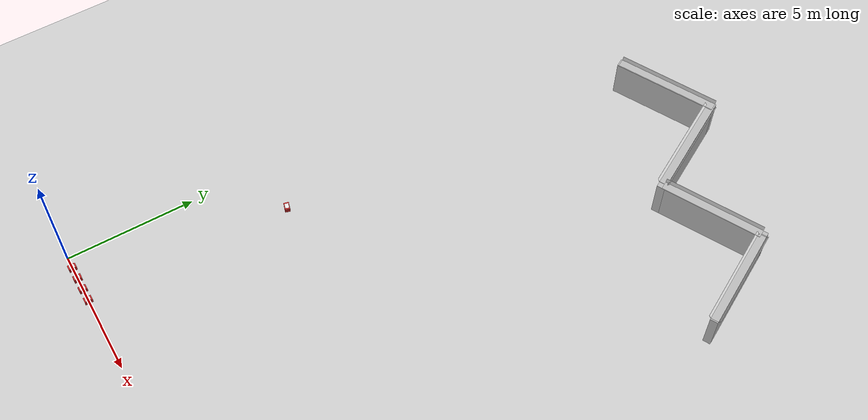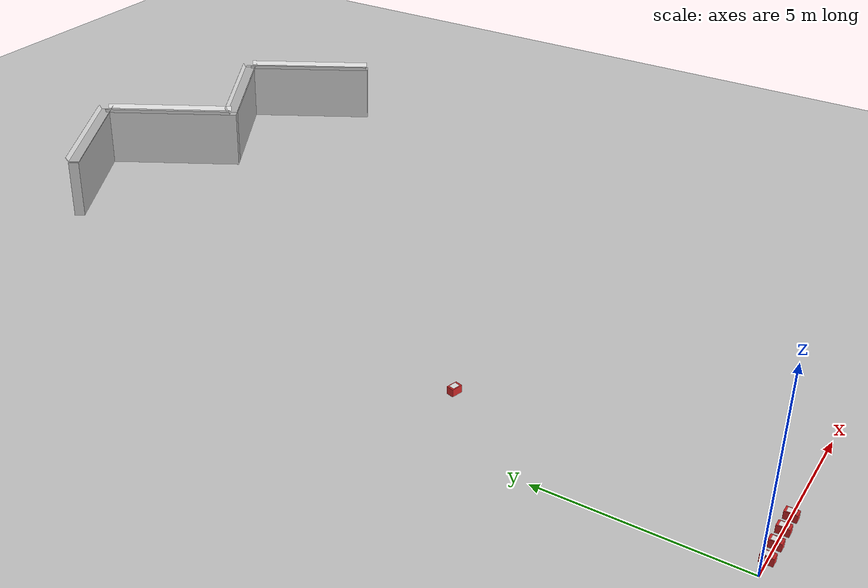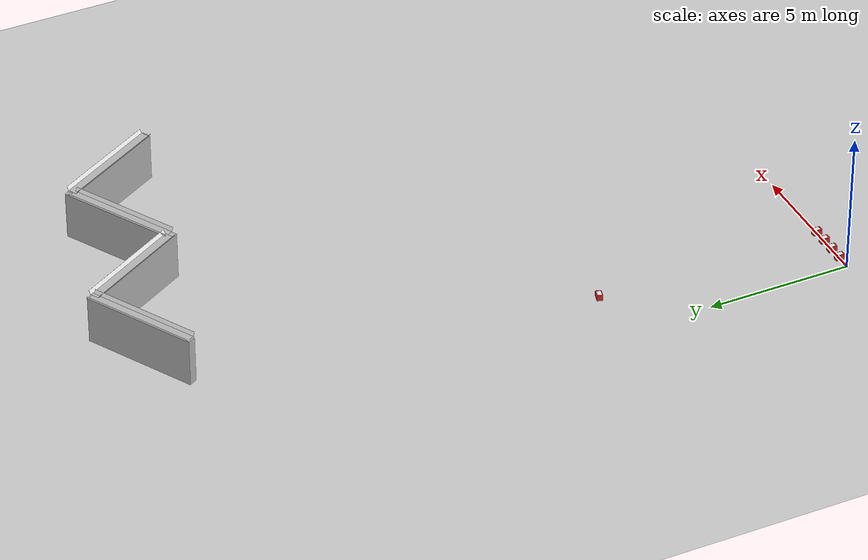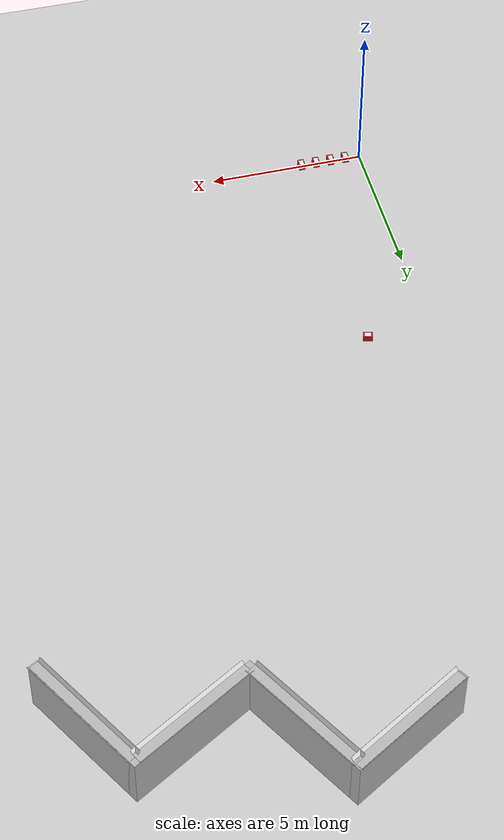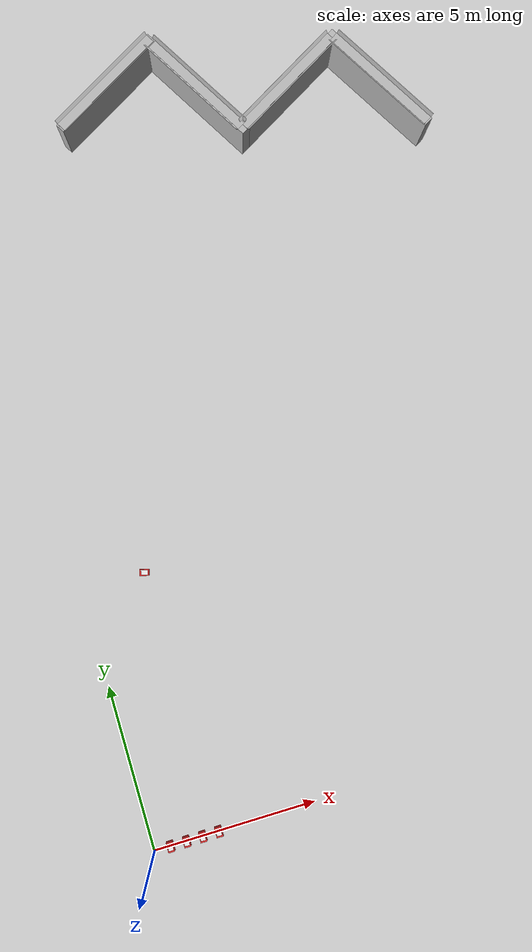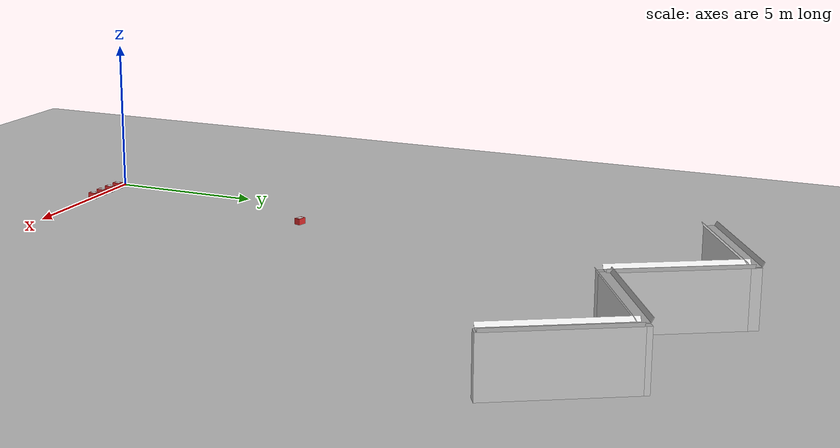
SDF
<?xml version="1.0" ?>
<sdf version="1.5">
  <world name="default">
    <!-- A global light source -->
    <include>
      <uri>model://sun</uri>
    </include>
    <!-- A ground plane -->
    <include>
      <uri>model://ground_plane</uri>
    </include>
    <include>
      <uri>model://asphalt_plane</uri>
    </include>

    <include>
      <uri>model://mbzirc_uav_wall</uri>
      <name>mbzirc_uav_wall</name>
	  <pose> 13.2 20.3 0.1 0 0 0.52359877559 </pose>
    </include>

    <include>
      <name>box_red_a</name>
      <uri>model://mbzirc_box_red</uri>
      <pose>0.5 0 0.1 0 0 0</pose>
    </include>
    <include>
      <name>box_red_b</name>
      <uri>model://mbzirc_box_red</uri>
      <pose>1.0 0 0.1 0 0 0</pose>
    </include>
    <include>
      <name>box_red_c</name>
      <uri>model://mbzirc_box_red</uri>
      <pose>1.5 0 0.1 0 0 0</pose>
    </include>
    <include>
      <name>box_red_d</name>
      <uri>model://mbzirc_box_red</uri>
      <pose>2.0 0 0.1 0 0 0</pose>
    </include>

    <include>
      <name>box_red_1</name>
      <uri>model://mbzirc_box_red</uri>
      <pose>2 8 0.1 0 0 1.308996939</pose>
    </include>

    <physics name='default_physics' default='0' type='ode'>
      <gravity>0 0 -9.8066</gravity>
      <ode>
        <solver>
          <type>quick</type>
          <iters>10</iters>
          <sor>1.3</sor>
          <use_dynamic_moi_rescaling>0</use_dynamic_moi_rescaling>
        </solver>
        <constraints>
          <cfm>0</cfm>
          <erp>0.2</erp>
          <contact_max_correcting_vel>100</contact_max_correcting_vel>
          <contact_surface_layer>0.001</contact_surface_layer>
        </constraints>
      </ode>
      <max_step_size>0.004</max_step_size>
      <real_time_factor>1</real_time_factor>
      <real_time_update_rate>250</real_time_update_rate>
      <magnetic_field>6.0e-6 2.3e-5 -4.2e-5</magnetic_field>
    </physics>
  </world>
</sdf>

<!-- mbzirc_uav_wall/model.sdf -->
<sdf version="1.5">
  <model name="mbzirc_uav_wall">
    <static>true</static>
    <link name="link1">
	<pose frame=''>0.0 0 0.95 0 0.0 0</pose>
      <collision name="collision">
        <geometry>
          <box>
            <size>0.3 4.0 1.7</size>
          </box>
        </geometry>
      </collision>
      <visual name="visual">
        <cast_shadows>false</cast_shadows>
        <geometry>
          <box>
            <size>0.3 4.0 1.7</size>
          </box>
        </geometry>
        <material>
          <script>
            <uri>model://mbzirc_uav_wall/materials/scripts</uri>
            <uri>model://mbzirc_uav_wall/materials/textures</uri>
            <name>vrc/tennis_net</name>
          </script>
        </material>
      </visual>
    </link>
    <link name="link2">
	<pose frame=''>-1.85 2.0 0.95 0 0.0 1.57079</pose>
      <collision name="collision">
        <geometry>
          <box>
            <size>0.3 4.0 1.7</size>
          </box>
        </geometry>
      </collision>
      <visual name="visual">
        <cast_shadows>false</cast_shadows>
        <geometry>
          <box>
            <size>0.3 4.0 1.7</size>
          </box>
        </geometry>
        <material>
          <script>
            <uri>model://mbzirc_uav_wall/materials/scripts</uri>
            <uri>model://mbzirc_uav_wall/materials/textures</uri>
            <name>vrc/tennis_net</name>
          </script>
        </material>
      </visual>
    </link>
    <link name="link3">
	<pose frame=''>-4.0 3.85 0.95 0 0.0 0.0</pose>
      <collision name="collision">
        <geometry>
          <box>
            <size>0.3 4.0 1.7</size>
          </box>
        </geometry>
      </collision>
      <visual name="visual">
        <cast_shadows>false</cast_shadows>
        <geometry>
          <box>
            <size>0.3 4.0 1.7</size>
          </box>
        </geometry>
        <material>
          <script>
            <uri>model://mbzirc_uav_wall/materials/scripts</uri>
            <uri>model://mbzirc_uav_wall/materials/textures</uri>
            <name>vrc/tennis_net</name>
          </script>
        </material>
      </visual>
    </link>
    <link name="link4">
	<pose frame=''>-5.85 6.0 0.95 0 0.0 1.57079</pose>
      <collision name="collision">
        <geometry>
          <box>
            <size>0.3 4.0 1.7</size>
          </box>
        </geometry>
      </collision>
      <visual name="visual">
        <cast_shadows>false</cast_shadows>
        <geometry>
          <box>
            <size>0.3 4.0 1.7</size>
          </box>
        </geometry>
        <material>
          <script>
            <uri>model://mbzirc_uav_wall/materials/scripts</uri>
            <uri>model://mbzirc_uav_wall/materials/textures</uri>
            <name>vrc/tennis_net</name>
          </script>
        </material>
      </visual>
    </link>

	<include>
      <uri>model://mbzirc_uav_channel_2</uri>
      <pose>-0.15 -2.0 1.76 0 0 0</pose>
      <name>mbzirc_uav_channel_1</name>
    </include>

	<include>
      <uri>model://mbzirc_uav_channel_2</uri>
      <pose>-0.0 1.85 1.76 0 0 1.57079</pose>
      <name>mbzirc_uav_channel_2</name>
    </include>

	<include>
      <uri>model://mbzirc_uav_channel_2</uri>
      <pose>-4.15 2.0 1.76 0 0 0</pose>
      <name>mbzirc_uav_channel_3</name>
    </include>

	<include>
      <uri>model://mbzirc_uav_channel_2</uri>
      <pose>-3.85 5.85 1.76 0 0 1.57079</pose>
      <name>mbzirc_uav_channel_4</name>
    </include>

  </model>
</sdf>

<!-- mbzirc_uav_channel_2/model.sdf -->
<sdf version="1.5">
  <model name="mbzirc_uav_channel_2">
    <static>true</static>
    <link name="link1">
	<pose frame=''>0.15 2.0 0.05 0 0.0 0</pose>
      <collision name="collision">
        <geometry>
          <box>
            <size>0.3 3.9 0.01</size>
          </box>
        </geometry>
      </collision>
      <visual name="visual">
        <cast_shadows>false</cast_shadows>
        <geometry>
          <box>
            <size>0.3 3.9 0.01</size>
          </box>
        </geometry>
        <material>
          <script>
            <uri>model://mbzirc_uav_channel_2/materials/scripts</uri>
            <uri>model://mbzirc_uav_channel_2/materials/textures</uri>
            <name>vrc/mesh</name>
          </script>
        </material>
      </visual>
    </link>
    <link name="link2">
	<pose frame=''>-0.04 2.0 0.11 0.0 -0.5 0.0</pose>
      <collision name="collision">
        <geometry>
          <box>
            <size>0.01 3.9 0.15</size>
          </box>
        </geometry>
      </collision>
      <visual name="visual">
        <cast_shadows>false</cast_shadows>
        <geometry>
          <box>
            <size>0.01 3.9 0.15</size>
          </box>
        </geometry>
        <material>
          <script>
            <name>Gazebo/White</name>
            <uri>file://media/materials/scripts/gazebo.material</uri>
          </script>
        </material>
      </visual>
    </link>
    <link name="link3">
	<pose frame=''>0.34 2.0 0.11 0.0 0.5 0.0</pose>
      <collision name="collision">
        <geometry>
          <box>
            <size>0.01 3.9 0.15</size>
          </box>
        </geometry>
      </collision>
      <visual name="visual">
        <cast_shadows>false</cast_shadows>
        <geometry>
          <box>
            <size>0.01 3.9 0.15</size>
          </box>
        </geometry>
        <material>
          <script>
            <name>Gazebo/White</name>
            <uri>file://media/materials/scripts/gazebo.material</uri>
          </script>
        </material>
      </visual>
    </link>
  </model>
</sdf>

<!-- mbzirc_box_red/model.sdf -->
<sdf version="1.5">
  <model name="mbzirc_box_red">
    <link name="link">
      <inertial>
        <pose>0 0 0.3 0 0 0</pose>
        <mass>1.0</mass>
        <inertia>
          <ixx>0.006667</ixx>
          <ixy>0</ixy>
          <ixz>0</ixz>
          <iyy>0.01083</iyy>
          <iyz>0</iyz>
          <izz>0.01083</izz>
        </inertia>
      </inertial>
      <collision name="collision">
        <geometry>
          <box>
            <size>0.2 0.3 0.2</size>
          </box>
        </geometry>
      </collision>
      <visual name="visual">
        <geometry>
          <box>
            <size>0.2 0.3 0.2</size>
          </box>
        </geometry>
        <material>
          <script>
            <name>Gazebo/Red</name>
            <uri>file://media/materials/scripts/gazebo.material</uri>
          </script>
        </material>
      </visual>
      <collision name="collision_top">
        <pose>0 0 0.1 0 0 0</pose>
        <geometry>
          <box>
            <size>0.15 0.2 0.01</size>
          </box>
        </geometry>
      </collision>
      <visual name="visual_top">
        <pose>0 0 0.1 0 0 0</pose>
        <geometry>
          <box>
            <size>0.15 0.2 0.01</size>
          </box>
        </geometry>
        <material>
          <script>
            <name>Gazebo/White</name>
            <uri>file://media/materials/scripts/gazebo.material</uri>
          </script>
        </material>
      </visual>
    </link>
  </model>
</sdf>
